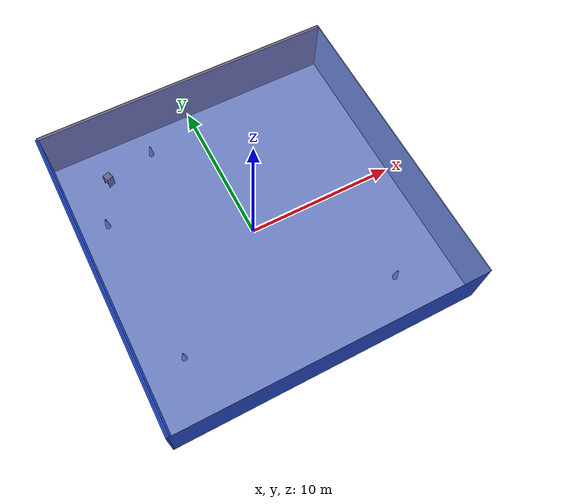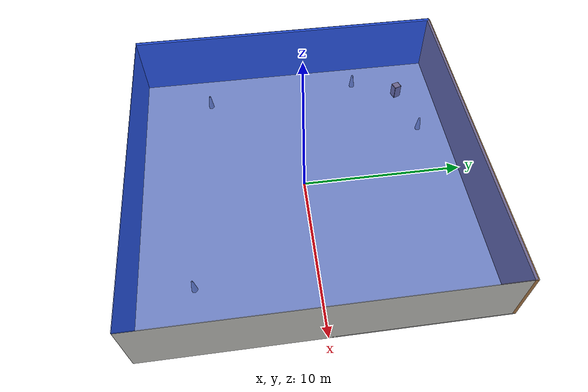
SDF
<sdf version="1.4">
 <world name="default">
  <physics type="ode">
   <max_step_size>0.001</max_step_size>
   <real_time_factor>1</real_time_factor>
   <real_time_update_rate>1000</real_time_update_rate>
   <gravity>0 0 -9.8</gravity>
  </physics>
  <scene><ambient>0.4 0.4 0.4 1</ambient><background>0.7 0.7 0.7 1</background><shadows>1</shadows></scene>
  <model name="Surrounding">
   <static>1</static>
   <link name="Ceiling">
    <collision name="Ceiling_Collision"><geometry><box><size>20 20 0.1</size></box></geometry></collision>
    <visual name="Ceiling_Visual">
     <geometry><box><size>20 20 0.1</size></box></geometry>
     <material>
      <script><uri>file://media/materials/scripts/gazebo.material</uri><name>Gazebo/BlueTransparent</name></script>
     </material>
    </visual>
    <pose>0 0 4.05 0 0 0</pose>
   </link>
   <link name="Wall_South">
    <collision name="Wall_South_Collision">
     <geometry><box><size>20 0 4</size></box></geometry>
     <pose>0 0 2 0 -0 0</pose>
    </collision>
    <visual name="Wall_South_Visual">
     <pose>0 0 2 0 -0 0</pose>
     <geometry><box><size>20 0 4</size></box></geometry>
     <material>
      <script><uri>file://media/materials/scripts/gazebo.material</uri><name>Gazebo/BlueLaser</name></script>
     </material>
    </visual>
    <velocity_decay><linear>0</linear><angular>0</angular></velocity_decay>
    <pose>0 -10 0 0 -0 0</pose>
   </link>
   <link name="Wall_East">
    <collision name="Wall_21_Collision">
     <geometry><box><size>20 0 4</size></box></geometry>
     <pose>0 0 2 0 -0 0</pose>
    </collision>
    <visual name="Wall_21_Visual">
     <pose>0 0 2 0 -0 0</pose>
     <geometry><box><size>20 0 4</size></box></geometry>
     <material>
      <script><uri>file://media/materials/scripts/gazebo.material</uri><name>Gazebo/CeilingTiled</name></script>
     </material>
    </visual>
    <velocity_decay><linear>0</linear><angular>0</angular></velocity_decay>
    <pose>10 0 0 0 -0 1.5708</pose>
   </link>
   <link name="Wall_North">
    <collision name="Wall_22_Collision">
     <geometry><box><size>20 0.2 4</size></box></geometry>
     <pose>0 0 2 0 -0 0</pose>
    </collision>
    <visual name="Wall_22_Visual">
     <pose>0 0 2 0 -0 0</pose>
     <geometry><box><size>20 0.2 4</size></box></geometry>
     <material>
      <script><uri>file://media/materials/scripts/gazebo.material</uri><name>Gazebo/WoodPallet</name></script>
     </material>
    </visual>
    <velocity_decay><linear>0</linear><angular>0</angular></velocity_decay>
    <pose>0 10 0 0 -0 0</pose>
   </link>
   <link name="Wall_West">
    <collision name="Wall_23_Collision">
     <geometry><box><size>20 0.2 4</size></box></geometry>
     <pose>0 0 2 0 -0 0</pose>
    </collision>
    <visual name="Wall_23_Visual">
     <pose>0 0 2 0 -0 0</pose>
     <geometry><box><size>20 0.2 4</size></box></geometry>
     <material>
      <script><uri>file://media/materials/scripts/gazebo.material</uri><name>Gazebo/BlueLaser</name></script>
     </material>
    </visual>
    <velocity_decay><linear>0</linear><angular>0</angular></velocity_decay>
    <pose>-10 0 0 0 0 -1.5708</pose>
   </link>
   <link name="Ground_link">
    <collision name="collision">
     <pose>0 0 .05 0 -0 0</pose>
     <geometry><box><size>20 20 0.1</size></box></geometry>
    </collision>
    <visual name="visual">
     <pose>0 0 .05 0 -0 0</pose>
     <geometry><box><size>20 20 0.1</size></box></geometry>
     <material>
      <script><uri>file://media/materials/scripts/gazebo.material</uri><name>Gazebo/Pioneer2Body</name></script>
     </material>
    </visual>
   </link>
   <static>1</static>
  </model>
  <spherical_coordinates>
   <surface_model>EARTH_WGS84</surface_model>
   <latitude_deg>0</latitude_deg>
   <longitude_deg>0</longitude_deg>
   <elevation>0</elevation>
   <heading_deg>0</heading_deg>
  </spherical_coordinates>
  <light name="lightball_0" type="diffuse">
   <diffuse>0.8 0.8 0.8 1</diffuse>
   <specular>0.2 0.2 0.2 1</specular>
   <attenuation>
    <range>100</range>
    <constant>0.7</constant>
    <linear>0.01</linear>
    <quadratic>0.001</quadratic>
   </attenuation>
   <direction>-0.5 0.1 -0.9</direction>
   <pose>-0.540761225023 -4.66026852465 0.851050838496 0 0 0</pose>
  </light>
  <light name="lightball_1" type="diffuse">
   <diffuse>0.8 0.8 0.8 1</diffuse>
   <specular>0.2 0.2 0.2 1</specular>
   <attenuation>
    <range>100</range>
    <constant>0.7</constant>
    <linear>0.01</linear>
    <quadratic>0.001</quadratic>
   </attenuation>
   <direction>-0.5 0.1 -0.9</direction>
   <pose>-3.38863522217 1.80442766684 1.80445061766 0 0 0</pose>
  </light>
  <light name="lightball_2" type="diffuse">
   <diffuse>0.8 0.8 0.8 1</diffuse>
   <specular>0.2 0.2 0.2 1</specular>
   <attenuation>
    <range>100</range>
    <constant>0.7</constant>
    <linear>0.01</linear>
    <quadratic>0.001</quadratic>
   </attenuation>
   <direction>-0.5 0.1 -0.9</direction>
   <pose>5.65419244647 -7.32456987545 1.90377324212 0 0 0</pose>
  </light>
  <light name="lightball_3" type="diffuse">
   <diffuse>0.8 0.8 0.8 1</diffuse>
   <specular>0.2 0.2 0.2 1</specular>
   <attenuation>
    <range>100</range>
    <constant>0.7</constant>
    <linear>0.01</linear>
    <quadratic>0.001</quadratic>
   </attenuation>
   <direction>-0.5 0.1 -0.9</direction>
   <pose>-6.08511046817 0.910364031683 2.64819209695 0 0 0</pose>
  </light>
  <light name="lightball_4" type="diffuse">
   <diffuse>0.8 0.8 0.8 1</diffuse>
   <specular>0.2 0.2 0.2 1</specular>
   <attenuation>
    <range>100</range>
    <constant>0.7</constant>
    <linear>0.01</linear>
    <quadratic>0.001</quadratic>
   </attenuation>
   <direction>-0.5 0.1 -0.9</direction>
   <pose>4.53837010441 1.21671810624 3.31363941974 0 0 0</pose>
  </light>
  <light name="lightball_5" type="diffuse">
   <diffuse>0.8 0.8 0.8 1</diffuse>
   <specular>0.2 0.2 0.2 1</specular>
   <attenuation>
    <range>100</range>
    <constant>0.7</constant>
    <linear>0.01</linear>
    <quadratic>0.001</quadratic>
   </attenuation>
   <direction>-0.5 0.1 -0.9</direction>
   <pose>3.91427122852 6.93413694491 3.18045807435 0 0 0</pose>
  </light>
  <light name="lightball_6" type="diffuse">
   <diffuse>0.8 0.8 0.8 1</diffuse>
   <specular>0.2 0.2 0.2 1</specular>
   <attenuation>
    <range>100</range>
    <constant>0.7</constant>
    <linear>0.01</linear>
    <quadratic>0.001</quadratic>
   </attenuation>
   <direction>-0.5 0.1 -0.9</direction>
   <pose>3.24403640633 8.52806142344 2.37086432393 0 0 0</pose>
  </light>
  <light name="lightball_7" type="diffuse">
   <diffuse>0.8 0.8 0.8 1</diffuse>
   <specular>0.2 0.2 0.2 1</specular>
   <attenuation>
    <range>100</range>
    <constant>0.7</constant>
    <linear>0.01</linear>
    <quadratic>0.001</quadratic>
   </attenuation>
   <direction>-0.5 0.1 -0.9</direction>
   <pose>8.682485485 8.43979745956 2.3245527433 0 0 0</pose>
  </light>
  <light name="lightball_8" type="diffuse">
   <diffuse>0.8 0.8 0.8 1</diffuse>
   <specular>0.2 0.2 0.2 1</specular>
   <attenuation>
    <range>100</range>
    <constant>0.7</constant>
    <linear>0.01</linear>
    <quadratic>0.001</quadratic>
   </attenuation>
   <direction>-0.5 0.1 -0.9</direction>
   <pose>-0.557205302606 8.10987361422 2.55130071202 0 0 0</pose>
  </light>
  <light name="lightball_9" type="diffuse">
   <diffuse>0.8 0.8 0.8 1</diffuse>
   <specular>0.2 0.2 0.2 1</specular>
   <attenuation>
    <range>100</range>
    <constant>0.7</constant>
    <linear>0.01</linear>
    <quadratic>0.001</quadratic>
   </attenuation>
   <direction>-0.5 0.1 -0.9</direction>
   <pose>7.11693086897 -9.1823590737 1.66945625889 0 0 0</pose>
  </light>
  <light name="lightball_10" type="diffuse">
   <diffuse>0.8 0.8 0.8 1</diffuse>
   <specular>0.2 0.2 0.2 1</specular>
   <attenuation>
    <range>100</range>
    <constant>0.7</constant>
    <linear>0.01</linear>
    <quadratic>0.001</quadratic>
   </attenuation>
   <direction>-0.5 0.1 -0.9</direction>
   <pose>-4.34812741017 -1.28151257355 0.627839513679 0 0 0</pose>
  </light>
  <light name="lightball_11" type="diffuse">
   <diffuse>0.8 0.8 0.8 1</diffuse>
   <specular>0.2 0.2 0.2 1</specular>
   <attenuation>
    <range>100</range>
    <constant>0.7</constant>
    <linear>0.01</linear>
    <quadratic>0.001</quadratic>
   </attenuation>
   <direction>-0.5 0.1 -0.9</direction>
   <pose>-2.69037254906 5.52314681514 1.62739468226 0 0 0</pose>
  </light>
  <include>
   <uri>model://construction_cone</uri>
   <pose>-7.40256789257 -5.58321454989 0 0 0 1.39643132494</pose>
  </include>
  <include>
   <uri>model://construction_cone</uri>
   <pose>-8.20113280183 4.47202987672 0 0 0 0.307626608626</pose>
  </include>
  <include><uri>model://cabinet</uri><pose>-6.90264840394 7.39103921882 0 0 0 0.329596963151</pose></include>
  <include>
   <uri>model://construction_cone</uri>
   <pose>-3.56743484742 8.17326494864 0 0 0 0.113445559279</pose>
  </include>
  <include>
   <uri>model://construction_cone</uri>
   <pose>6.39175311787 -6.86716904323 0 0 0 0.388742604961</pose>
  </include>
 </world>
</sdf>

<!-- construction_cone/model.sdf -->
<sdf version="1.5">
  <model name="Construction Cone">
    <link name="link">
      <collision name="collision">
        <geometry>
          <mesh>
            <scale>10 10 10</scale>
            <uri>file://isr-testbed/construction_cone/meshes/construction_cone.dae</uri>
          </mesh>
        </geometry>
      </collision>
      <visual name="visual">
        <geometry>
          <mesh>
            <scale>10 10 10</scale>
            <uri>file://isr-testbed/construction_cone/meshes/construction_cone.dae</uri>
          </mesh>
        </geometry>
      </visual>
    </link>
  </model>
</sdf>

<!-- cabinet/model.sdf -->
<sdf version="1.5">
  <model name="cabinet">
    <static>true</static>
    <link name="cabinet_bottom_plate">
      <inertial>
        <pose>0 0 -1 0 0 0</pose>
        <inertia>
          <ixx>2.050000</ixx>
          <ixy>0</ixy>
          <ixz>0</ixz>
          <iyy>2.050000</iyy>
          <iyz>0</iyz>
          <izz>2.050000</izz>
        </inertia>
        <mass>25.000000</mass>
      </inertial>
      <collision name="cabinet_bottom_plate_geom">
        <pose>0 0 0.010000 0 0 0</pose>
        <geometry>
          <box>
            <size>0.450000 0.450000 0.020000</size>
          </box>
        </geometry>
      </collision>
      <visual name="cabinet_bottom_plate_geom_visual">
        <pose>0 0 0.010000 0 0 0</pose>
        <geometry>
          <box>
            <size>0.450000 0.450000 0.020000</size>
          </box>
        </geometry>
        <material>
          <script>
            <uri>model://media/materials/scripts/gazebo.material</uri>
            <name>Gazebo/Wood</name>
          </script>
        </material>
      </visual>
      <collision name="cabinet_bottom_plate_geom_cabinet_back_plate">
        <pose>0.235000 0 0.510000 0 0 0</pose>
        <geometry>
          <box>
            <size>0.020000 0.450000 1.020000</size>
          </box>
        </geometry>
      </collision>
      <visual name="cabinet_bottom_plate_geom_cabinet_back_plate_visual">
        <pose>0.235000 0 0.510000 0 0 0</pose>
        <geometry>
          <box>
            <size>0.020000 0.450000 1.020000</size>
          </box>
        </geometry>
        <material>
          <script>
            <uri>model://media/materials/scripts/gazebo.material</uri>
            <name>Gazebo/Wood</name>
          </script>
        </material>
      </visual>
      <collision name="cabinet_bottom_plate_geom_cabinet_left_plate">
        <pose>0 0.235000 0.510000 0 0 0</pose>
        <geometry>
          <box>
            <size>0.450000 0.020000 1.020000</size>
          </box>
        </geometry>
      </collision>
      <visual name="cabinet_bottom_plate_geom_cabinet_left_plate_visual">
        <pose>0 0.235000 0.510000 0 0 0</pose>
        <geometry>
          <box>
            <size>0.450000 0.020000 1.020000</size>
          </box>
        </geometry>
        <material>
          <script>
            <uri>model://media/materials/scripts/gazebo.material</uri>
            <name>Gazebo/Wood</name>
          </script>
        </material>
      </visual>
      <collision name="cabinet_bottom_plate_geom_cabinet_middle_plate">
        <pose>0 0 0.510000 0 0 0</pose>
        <geometry>
          <box>
            <size>0.450000 0.450000 0.020000</size>
          </box>
        </geometry>
      </collision>
      <visual name="cabinet_bottom_plate_geom_cabinet_middle_plate_visual">
        <pose>0 0 0.510000 0 0 0</pose>
        <geometry>
          <box>
            <size>0.450000 0.450000 0.020000</size>
          </box>
        </geometry>
        <material>
          <script>
            <uri>model://media/materials/scripts/gazebo.material</uri>
            <name>Gazebo/Wood</name>
          </script>
        </material>
      </visual>
      <collision name="cabinet_bottom_plate_geom_cabinet_right_plate">
        <pose>0 -0.235000 0.510000 0 0 0</pose>
        <geometry>
          <box>
            <size>0.450000 0.020000 1.020000</size>
          </box>
        </geometry>
      </collision>
      <visual name="cabinet_bottom_plate_geom_cabinet_right_plate_visual">
        <pose>0 -0.235000 0.510000 0 0 0</pose>
        <geometry>
          <box>
            <size>0.450000 0.020000 1.020000</size>
          </box>
        </geometry>
        <material>
          <script>
            <uri>model://media/materials/scripts/gazebo.material</uri>
            <name>Gazebo/Wood</name>
          </script>
        </material>
      </visual>
      <collision name="cabinet_bottom_plate_geom_cabinet_top_plate">
        <pose>0 0 1.010000 0 0 0</pose>
        <geometry>
          <box>
            <size>0.450000 0.450000 0.020000</size>
          </box>
        </geometry>
      </collision>
      <visual name="cabinet_bottom_plate_geom_cabinet_top_plate_visual">
        <pose>0 0 1.010000 0 0 0</pose>
        <geometry>
          <box>
            <size>0.450000 0.450000 0.020000</size>
          </box>
        </geometry>
        <material>
          <script>
            <uri>model://media/materials/scripts/gazebo.material</uri>
            <name>Gazebo/Wood</name>
          </script>
        </material>
      </visual>
    </link>
  </model>
</sdf>
